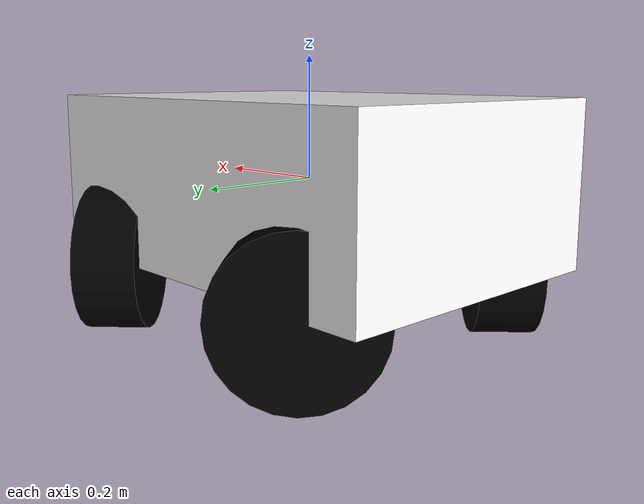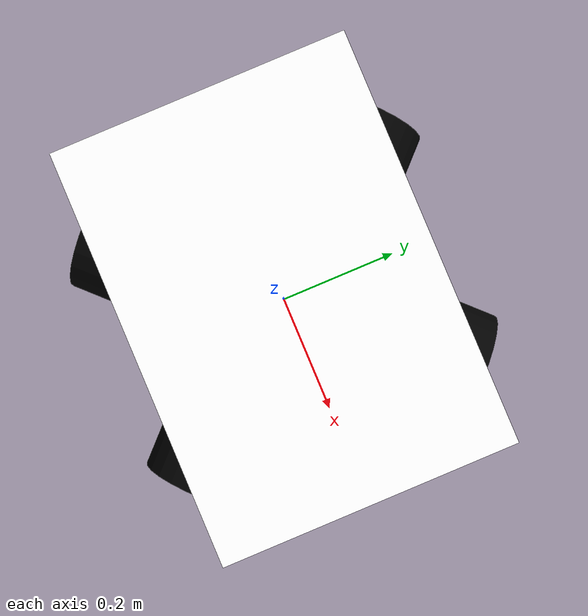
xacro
<?xml version="1.0"?>
<robot name="agv" xmlns:xacro="http://ros.org/wiki/xacro">
<!-- DEFINE -->

  <material name="Black">
    <color rgba="0.0 0.0 0.0 1.0"/>
  </material>

  <material name="White">
    <color rgba="1.0 1.0 1.0 1.0"/>
  </material>

  <!-- AGV Base -->
  <xacro:property name="agv_base_height" value="0.27" />
  <xacro:property name="agv_base_width" value="0.5" />
  <xacro:property name="agv_base_length" value="0.7" />
  <xacro:property name="agv_base_mass" value="1.0" />

  <!--All units in m-kg-s-radians unit system -->
  <xacro:property name="M_PI" value="3.1415926535897931" />
  <xacro:property name="M_PI_2" value="1.570796327" />
  <xacro:property name="DEG_TO_RAD" value="0.017453293" />

  <!-- Macro for calculating inertia of cube -->
  <xacro:macro name="cuboid_inertia" params="m w d h">
    <inertia  ixx="${m*(w*w+h*h)/12}" ixy = "0" ixz = "0"
              iyy="${m*(d*d+h*h)/12}" iyz = "0"
              izz="${m*(d*d+w*w)/12}" />
  </xacro:macro>

<!-- DEFINE END -->

  <!-- BASE-FOOTPRINT -->

  <!-- AGV_BASE_LINK -->

  <link name="agv_base_link">
   <visual>
      <origin xyz="0 0 0" rpy="0 0 0" />
      <geometry>
        <box size="${agv_base_length} ${agv_base_width} ${agv_base_height}" />
      </geometry>
      <material name="White" />
    </visual>
    <inertial>
     <mass value="${agv_base_mass}" />
     <origin xyz="0 0 0" rpy="0 0 0" />
     <cuboid_inertia m="${agv_base_mass}" d="${agv_base_length}" w="${agv_base_width}" h="${agv_base_height}" />
   </inertial>
    <!-- base top -->
    <collision>
      <origin xyz="0 0 ${agv_base_height/4-0.014}" rpy="0 0 0" />
      <geometry>
        <box size="${agv_base_length} ${agv_base_width} ${agv_base_height/2-0.027}" />
      </geometry>
    </collision>
    <!-- base bottom -->
    <collision>
      <origin xyz="0 0 ${-agv_base_height/4-0.0075}" rpy="0 0 0" />
      <geometry>
        <box size="${agv_base_length} ${agv_base_width} ${agv_base_height/2-0.015}" />
      </geometry>
    </collision>
    <!-- four corners -->
    <collision>
      <origin xyz="0.325 0.225 0.0" rpy="0 0 0" />
      <geometry>
        <box size="0.05 0.05 ${agv_base_height}" />
      </geometry>
    </collision>
    <collision>
      <origin xyz="0.325 -0.225 0.0" rpy="0 0 0" />
      <geometry>
        <box size="0.05 0.05 ${agv_base_height}" />
      </geometry>
    </collision>
    <collision>
      <origin xyz="-0.325 0.225 0.0" rpy="0 0 0" />
      <geometry>
        <box size="0.05 0.05 ${agv_base_height}" />
      </geometry>
    </collision>
    <collision>
      <origin xyz="-0.325 -0.225 0.0" rpy="0 0 0" />
      <geometry>
        <box size="0.05 0.05 ${agv_base_height}" />
      </geometry>
    </collision>
  </link>

  <!-- Wheels -->

  <xacro:include filename="$(find launcher)/urdf/wheel/omni_wheel.urdf.xacro" />

  <xacro:omni_wheel_250 name="wheel_front_left" parent="agv_base_link">
    <origin xyz="0.2245 0.2245 ${-agv_base_height/2}" rpy="${M_PI_2} 0 ${-M_PI_2/2}" />
    <fdir1>0 0 0</fdir1>
  </xacro:omni_wheel_250>
  <xacro:omni_wheel_250 name="wheel_front_right" parent="agv_base_link">
    <origin xyz="0.2245 -0.2245 ${-agv_base_height/2}" rpy="${-M_PI_2} 0 ${M_PI_2/2}" />
    <fdir1>0 0 0</fdir1>
  </xacro:omni_wheel_250>
  <xacro:omni_wheel_250 name="wheel_back_left" parent="agv_base_link">
    <origin xyz="-0.2245 0.2245 ${-agv_base_height/2}" rpy="${M_PI_2} 0 ${M_PI_2/2}" />
    <fdir1>0 0 0</fdir1>
  </xacro:omni_wheel_250>
  <xacro:omni_wheel_250 name="wheel_back_right" parent="agv_base_link">
    <origin xyz="-0.2245 -0.2245 ${-agv_base_height/2}" rpy="${-M_PI_2} 0 ${-M_PI_2/2}" />
    <fdir1>0 0 0</fdir1>
  </xacro:omni_wheel_250>

  <gazebo>
    <plugin name="gazebo_ros_control" filename="libgazebo_ros_control.so">
      <robotNamespace>agv</robotNamespace>
      <controlPeriod>0.001</controlPeriod>
      <robotParam>/robot_description</robotParam>
      <robotSimType>gazebo_ros_control/DefaultRobotHWSim</robotSimType>
    </plugin>
  </gazebo>

</robot>

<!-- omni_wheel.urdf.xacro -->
<robot xmlns:xacro="http://ros.org/wiki/xacro" name="mpo_500">
  <!-- Macro for calculating inertia of cylinder -->
  <xacro:macro name="cylinder_inertia" params="m r h">
    <inertia  ixx="${m*(3*r*r+h*h)/12}" ixy = "0" ixz = "0"
              iyy="${m*(3*r*r+h*h)/12}" iyz = "0"
              izz="${m*r*r/2}" />
  </xacro:macro>

  <xacro:macro name="omni_wheel_250" params="name parent *origin *fdir1">
    <joint name="${name}_joint" type="continuous">
      <xacro:insert_block name="origin" />
      <parent link="${parent}" />
      <child link="${name}_link" />
      <axis xyz="0 0 1" rpy="0 0"/>
      <dynamics damping="0.001" friction="1.0"/>
      <limit effort="1000000.0" velocity="10000.0"/>
     </joint>
   <gazebo reference="${name}_joint">
     <stopCfm>0.0001</stopCfm>
     <stopErp>0.8</stopErp>
     <provideFeedback>true</provideFeedback>
     <implicitSpringDamper>true</implicitSpringDamper>
   </gazebo>
   <!-- SDF -->
  <gazebo reference="${name}_joint">
    <gearbox_ratio>32.0</gearbox_ratio>
  </gazebo>

  <link name="${name}_link" type="wheel">
    <visual>
      <origin xyz="0 0 0" rpy="0 0 0" />
      <geometry>
        <cylinder radius="0.12" length="0.1"/>
      </geometry>
      <material name="Black" />
    </visual>

    <inertial>
      <mass value="1.0" />
      <origin xyz="0 0 0" rpy="0 0 0" />
      <cylinder_inertia  m="2.5" r="0.12" h="0.1" />
    </inertial>

    <collision>
      <origin xyz="0 0 0" rpy="0 0 0" />
      <geometry>
        <cylinder radius="0.12" length="0.1"/>
      </geometry>
    </collision>
  </link>
  <gazebo reference="${name}_link">
    <material>Gazebo/Black</material>
    <gravity>true</gravity>
    <selfCollide>false</selfCollide>
    <maxVel>10000.0</maxVel>
    <kp>0.0</kp>
    <kd>0.0</kd>
  </gazebo>
  <!-- SDF -->
  <gazebo reference="${name}_link">
    <collision>
      <surface>
        <friction>
          <torsional>
            <coefficient>1.0</coefficient>
          </torsional>
          <ode>
            <mu1>0</mu1>
            <mu2>0.5</mu2>
            <xacro:insert_block name="fdir1"/>
            <slip1>0</slip1>
            <slip2>0</slip2>
          </ode>
        </friction>
      </surface>
    </collision>
  </gazebo>

  <transmission name="${name}_joint_trans">
    <type>transmission_interface/SimpleTransmission</type>
    <joint name="${name}_joint">
      <hardwareInterface>VelocityJointInterface</hardwareInterface>
    </joint>
    <actuator name="${name}_joint_motor">
      <mechanicalReduction>1</mechanicalReduction>
    </actuator>
  </transmission>

  </xacro:macro>

</robot>
